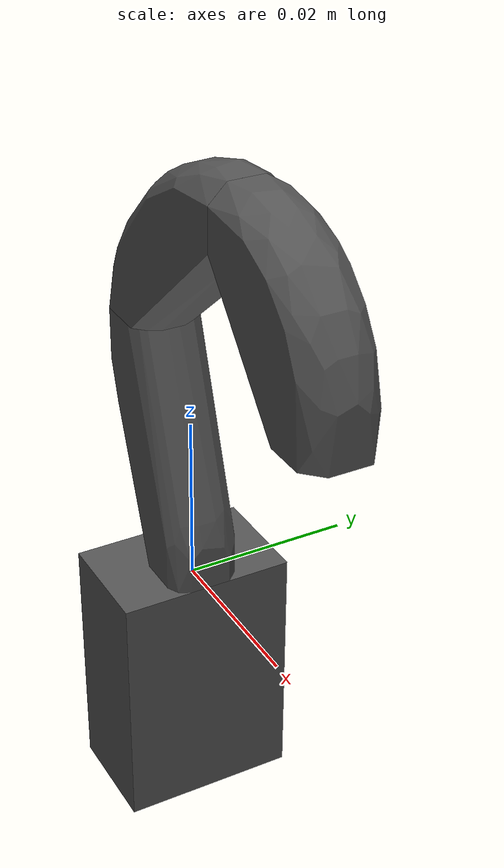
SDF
<?xml version='1.0'?>
<sdf version="1.4">
  <model name="hook">
    <link name="hook_link">
      <inertial>
        <mass>0.001</mass>
        <inertia> <!-- inertias are tricky to compute -->
          <!-- http://gazebosim.org/tutorials?tut=inertia&cat=build_robot -->
          <ixx>0.083</ixx>       <!-- for a box: ixx = 0.083 * mass * (y*y + z*z) -->
          <ixy>0.0</ixy>         <!-- for a box: ixy = 0 -->
          <ixz>0.0</ixz>         <!-- for a box: ixz = 0 -->
          <iyy>0.083</iyy>       <!-- for a box: iyy = 0.083 * mass * (x*x + z*z) -->
          <iyz>0.0</iyz>         <!-- for a box: iyz = 0 -->
          <izz>0.083</izz>       <!-- for a box: izz = 0.083 * mass * (x*x + y*y) -->
        </inertia>
      </inertial>
      <collision name="collision">
        <geometry>
          <mesh>
            <drake:declare_convex/>
            <scale>1 1 1</scale>
            <uri>meshes/obj/hookconvex_0.obj</uri>
          </mesh>
        </geometry>
      </collision>
      <visual name="visual">
        <geometry>
          <mesh>
            <scale>1 1 1</scale>
            <uri>meshes/obj/hookconvex_0.obj</uri>
          </mesh>
        </geometry>
        <material>
          <diffuse>0.33 0.33 0.33 1</diffuse>
        </material>
      </visual>
    </link>

    <link name="hook_link_1">
      <inertial>
        <mass>0.001</mass>
        <inertia> <!-- inertias are tricky to compute -->
          <!-- http://gazebosim.org/tutorials?tut=inertia&cat=build_robot -->
          <ixx>0.083</ixx>       <!-- for a box: ixx = 0.083 * mass * (y*y + z*z) -->
          <ixy>0.0</ixy>         <!-- for a box: ixy = 0 -->
          <ixz>0.0</ixz>         <!-- for a box: ixz = 0 -->
          <iyy>0.083</iyy>       <!-- for a box: iyy = 0.083 * mass * (x*x + z*z) -->
          <iyz>0.0</iyz>         <!-- for a box: iyz = 0 -->
          <izz>0.083</izz>       <!-- for a box: izz = 0.083 * mass * (x*x + y*y) -->
        </inertia>
      </inertial>
      <collision name="collision">
        <geometry>
          <mesh>
            <drake:declare_convex/>
            <scale>1 1 1</scale>
            <uri>meshes/obj/hookconvex_1.obj</uri>
          </mesh>
        </geometry>
      </collision>
      <visual name="visual">
        <geometry>
          <mesh>
            <scale>1 1 1</scale>
            <uri>meshes/obj/hookconvex_1.obj</uri>
          </mesh>
        </geometry>
        <material>
          <diffuse>0.33 0.33 0.33 1</diffuse>
        </material>
      </visual>
    </link>

    <link name="hook_link_2">
      <inertial>
        <mass>0.001</mass>
        <inertia> <!-- inertias are tricky to compute -->
          <!-- http://gazebosim.org/tutorials?tut=inertia&cat=build_robot -->
          <ixx>0.083</ixx>       <!-- for a box: ixx = 0.083 * mass * (y*y + z*z) -->
          <ixy>0.0</ixy>         <!-- for a box: ixy = 0 -->
          <ixz>0.0</ixz>         <!-- for a box: ixz = 0 -->
          <iyy>0.083</iyy>       <!-- for a box: iyy = 0.083 * mass * (x*x + z*z) -->
          <iyz>0.0</iyz>         <!-- for a box: iyz = 0 -->
          <izz>0.083</izz>       <!-- for a box: izz = 0.083 * mass * (x*x + y*y) -->
        </inertia>
      </inertial>
      <collision name="collision">
        <geometry>
          <mesh>
            <drake:declare_convex/>
            <scale>1 1 1</scale>
            <uri>meshes/obj/hookconvex_2.obj</uri>
          </mesh>
        </geometry>
      </collision>
      <visual name="visual">
        <geometry>
          <mesh>
            <scale>1 1 1</scale>
            <uri>meshes/obj/hookconvex_2.obj</uri>
          </mesh>
        </geometry>
        <material>
          <diffuse>0.33 0.33 0.33 1</diffuse>
        </material>
      </visual>
    </link>

    <link name="hook_link_3">
      <inertial>
        <mass>0.001</mass>
        <inertia> <!-- inertias are tricky to compute -->
          <!-- http://gazebosim.org/tutorials?tut=inertia&cat=build_robot -->
          <ixx>0.083</ixx>       <!-- for a box: ixx = 0.083 * mass * (y*y + z*z) -->
          <ixy>0.0</ixy>         <!-- for a box: ixy = 0 -->
          <ixz>0.0</ixz>         <!-- for a box: ixz = 0 -->
          <iyy>0.083</iyy>       <!-- for a box: iyy = 0.083 * mass * (x*x + z*z) -->
          <iyz>0.0</iyz>         <!-- for a box: iyz = 0 -->
          <izz>0.083</izz>       <!-- for a box: izz = 0.083 * mass * (x*x + y*y) -->
        </inertia>
      </inertial>
      <collision name="collision">
        <geometry>
          <mesh>
            <drake:declare_convex/>
            <scale>1 1 1</scale>
            <uri>meshes/obj/hookconvex_3.obj</uri>
          </mesh>
        </geometry>
      </collision>
      <visual name="visual">
        <geometry>
          <mesh>
            <scale>1 1 1</scale>
            <uri>meshes/obj/hookconvex_3.obj</uri>
          </mesh>
        </geometry>
        <material>
          <diffuse>0.33 0.33 0.33 1</diffuse>
        </material>
      </visual>
    </link>

    <joint name="joint_1" type="fixed">
      <parent>hook_link</parent>
      <child>hook_link_1</child>
    </joint>
    <joint name="joint_2" type="fixed">
      <parent>hook_link_1</parent>
      <child>hook_link_2</child>
    </joint>
    <joint name="joint_3" type="fixed">
      <parent>hook_link_2</parent>
      <child>hook_link_3</child>
    </joint>
  </model>
</sdf>
